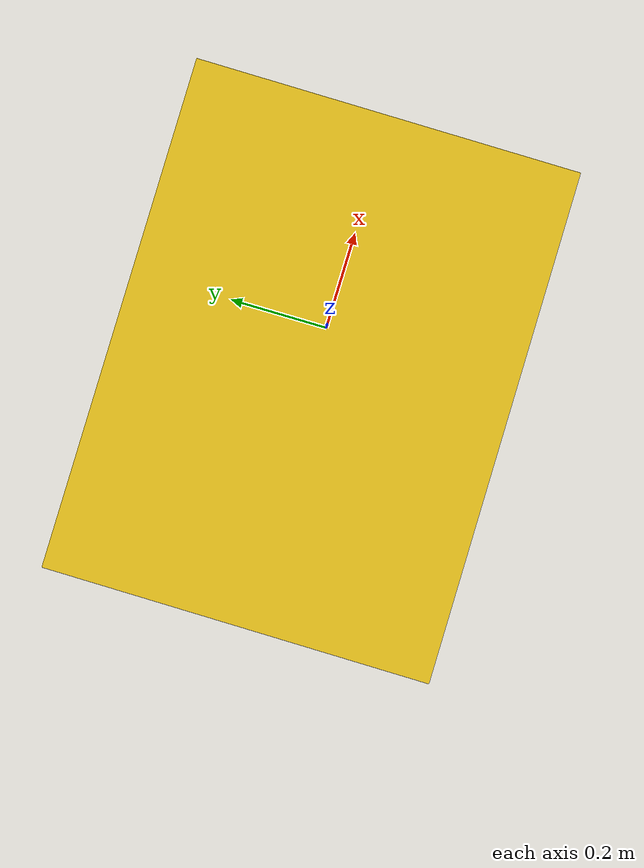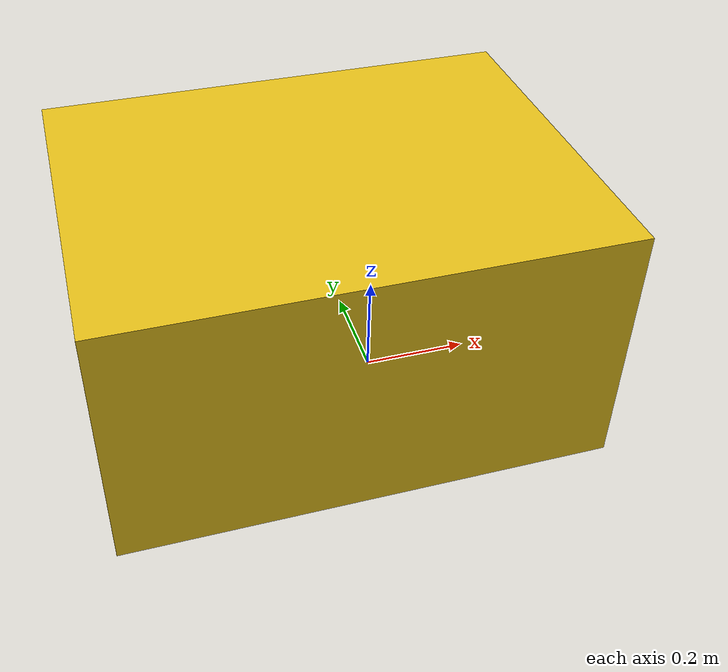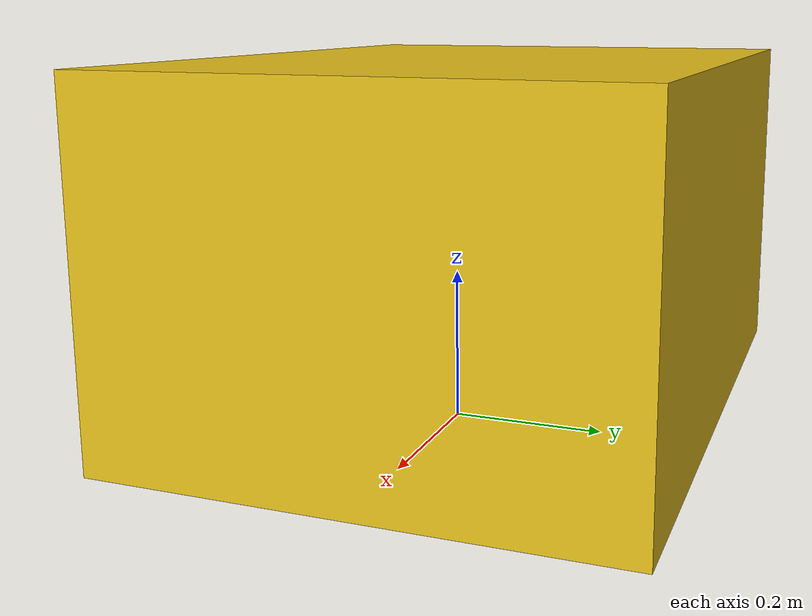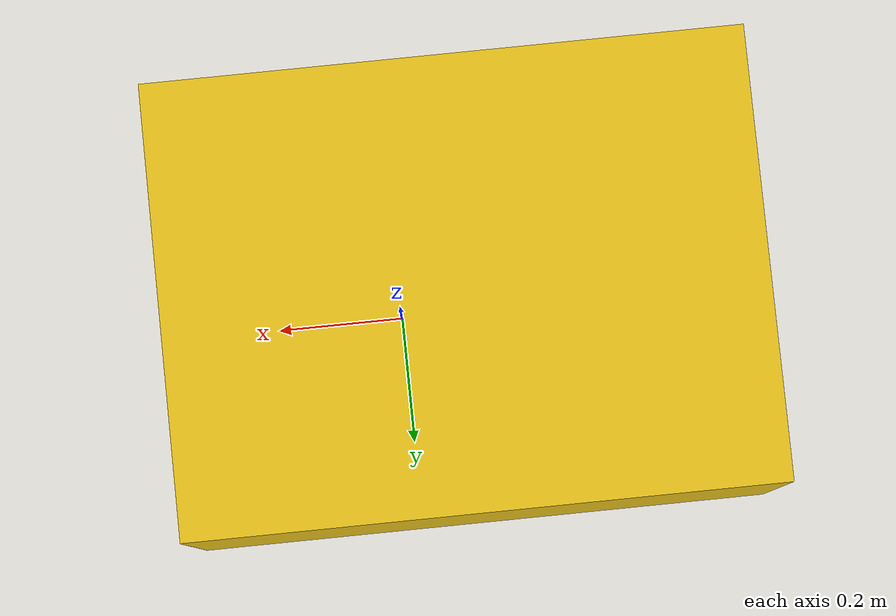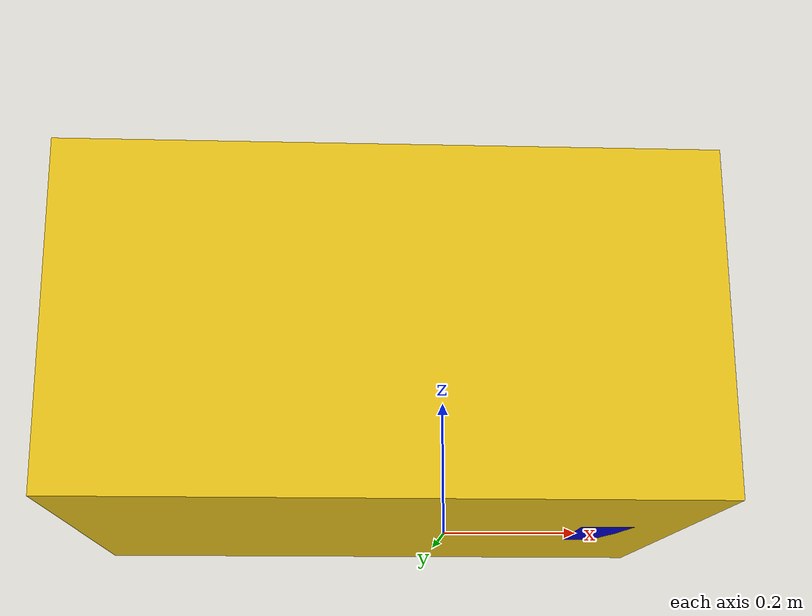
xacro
<?xml version="1.0"?>
<!-- ft: xml -->

<robot name="box_powerbot"
	xmlns:sensor="http://playerstage.sourceforge.net/gazebo/xmlschema/#sensor"
	xmlns:controller="http://playerstage.sourceforge.net/gazebo/xmlschema/#controller"
	xmlns:interface="http://playerstage.sourceforge.net/gazebo/xmlschema/#interface"
	xmlns:xacro="http://ros.org/wiki/xacro">

  <xacro:property name="M_PI" value="3.1415926535897931" />

  <xacro:property name="base_size_x" value="0.900" />
  <xacro:property name="base_size_y" value="0.680" />
  <xacro:property name="base_size_z" value="0.480" />

  <xacro:property name="base_height_offset" value="0.07" />
<xacro:property name="base_mass" value="12000.0" />

  <xacro:property name="base_laser_size_x" value="0.15" />
  <xacro:property name="base_laser_size_y" value="0.15" />
  <xacro:property name="base_laser_size_z" value="0.15" />

  <xacro:property name="base_laser_offset_x" value="0.27" />
  <xacro:property name="base_center_offset" value="0.1" />

  <xacro:property name="laser_offset" value="0.06" />
  <xacro:property name="laser_frame_offset" value="0.11" />

  <material name="Blue">
    <color rgba="0.0 0.0 0.8 1.0"/>
  </material>

  <material name="Yellow">
    <color rgba="0.9 0.75 0.1 1.0"/>
  </material>

  <material name="Black">
    <color rgba="0.0 0.0 0.0 1.0"/>
  </material>

  <!-- Base -->

  <link name="base_link">
    <inertial>
      <mass value="${base_mass}" />
      <origin xyz="${base_size_x/2} ${base_size_y/2} ${base_size_z/2}" />
      <inertia ixx="5.652232699207" ixy="-0.009719934438" ixz="1.293988226423"
		iyy="5.669473158652" iyz="-0.007379583694" izz="3.683196351726" />
    </inertial>

    <visual>
      <origin xyz="-${base_center_offset} 0 ${base_size_z/2}" rpy="0 0 0" />
      <geometry name="base_visual_geom">
	<box size="${base_size_x} ${base_size_y} ${base_size_z}" />
      </geometry>

      <material name="Yellow" />
    </visual>

    <collision name="base_collision">
      <origin xyz="0 0 ${base_size_z/2}" rpy="0 0 0" />
      <geometry name="base_collision_geom">
	<box size="${base_size_x} ${base_size_y} ${base_size_z}" />
      </geometry>
    </collision>
  </link>

  <!-- Base footprint -->
  <joint name="base_footprint_joint" type="fixed">
    <origin xyz="0 0 -${base_height_offset}" rpy="0 0 0" />
    <parent link="base_link"/>
    <child link="base_footprint"/>
  </joint>

  <link name="base_footprint" />

  <!-- base laser -->
  <joint name="base_laser_joint" type="fixed">
    <origin xyz="${base_laser_offset_x} 0 ${base_laser_size_z/2}" rpy="0 0 0" />
    <parent link="base_link"/>
    <child link="base_laser"/>
  </joint>

  <link name="base_laser" type="laser">
    <inertial>
      <mass value="1.0" />
      <origin xyz="0 0 0" />
      <inertia ixx="0.1" ixy="0" ixz="0" iyy="0.1" iyz="0" izz="0.1" />
    </inertial>

    <visual name="base_lvisual">
      <origin xyz="0 0 0" rpy="0 0 0" />
      <geometry name="base_laser_visual_geom">
	<box size="${base_laser_size_x} ${base_laser_size_y} ${base_laser_size_z}"/>
      </geometry>

      <material name="Blue" />
    </visual>

    <collision name="base_lcollision">
      <origin xyz="0 0 0" rpy="0 0 0" />
      <geometry name="base_laser_collision_geom">
	<box size="${base_laser_size_x} ${base_laser_size_y} ${base_laser_size_z}"/>
      </geometry>
    </collision>

  </link>

</robot>
